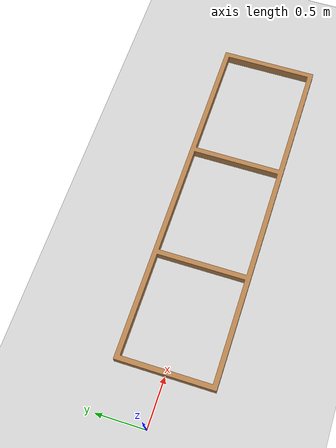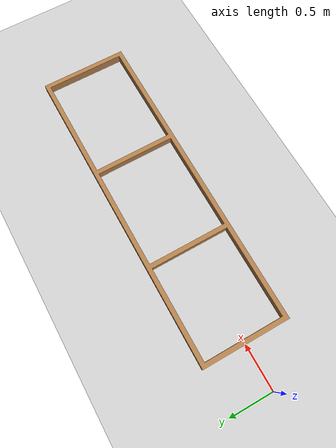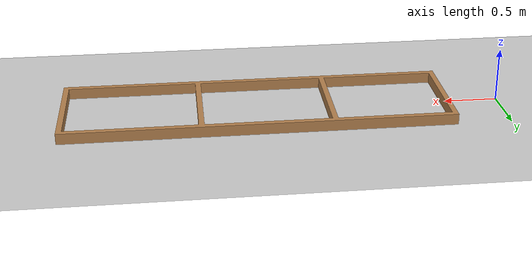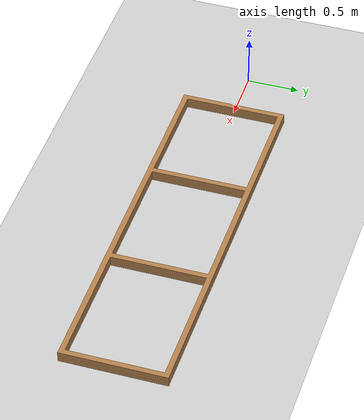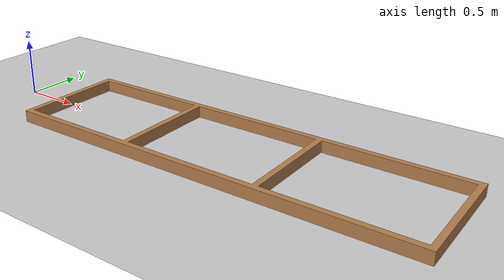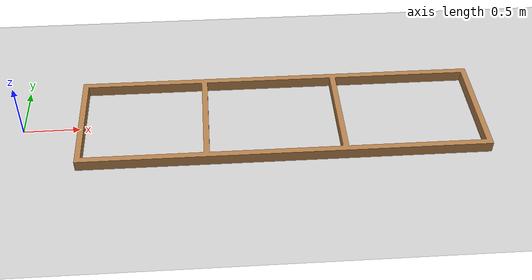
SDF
<?xml version="1.0"?>
<sdf version="1.4">
  <world name="default">
    <include>
      <uri>model://ground_plane</uri>
    </include>
    <include>
      <uri>model://sun</uri>
    </include>
    <model name="joist">
      <pose>2.3 0 0  0 0 1.5707</pose>
      <static>true</static>
      <link name="base">
        <inertial>
          <mass>30</mass>
        </inertial>
        <visual name="visual">
          <geometry>
            <mesh><uri>model://interbotix_xshexapod_gazebo/meshes/joist.dae</uri></mesh>
          </geometry>
          <material>
            <script>
              <uri>file://media/materials/scripts/gazebo.material</uri>
              <name>Gazebo/Wood</name>
            </script>
          </material>
        </visual>
        <collision name="collision">
          <geometry>
            <mesh><uri>model://interbotix_xshexapod_gazebo/meshes/joist.dae</uri></mesh>
          </geometry>
        </collision>
      </link>
    </model>
  </world>
</sdf>
